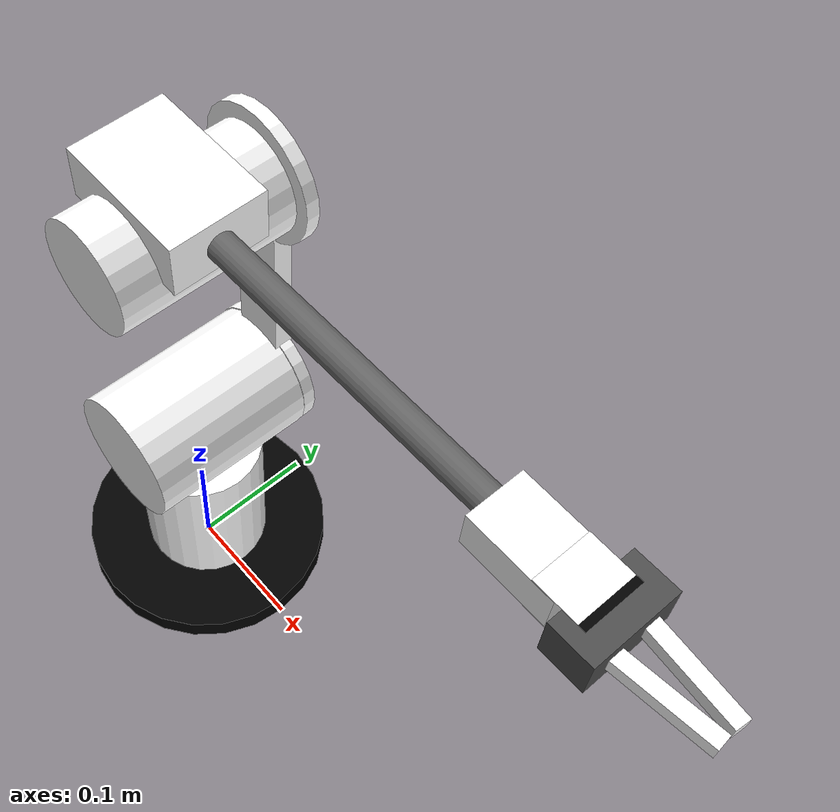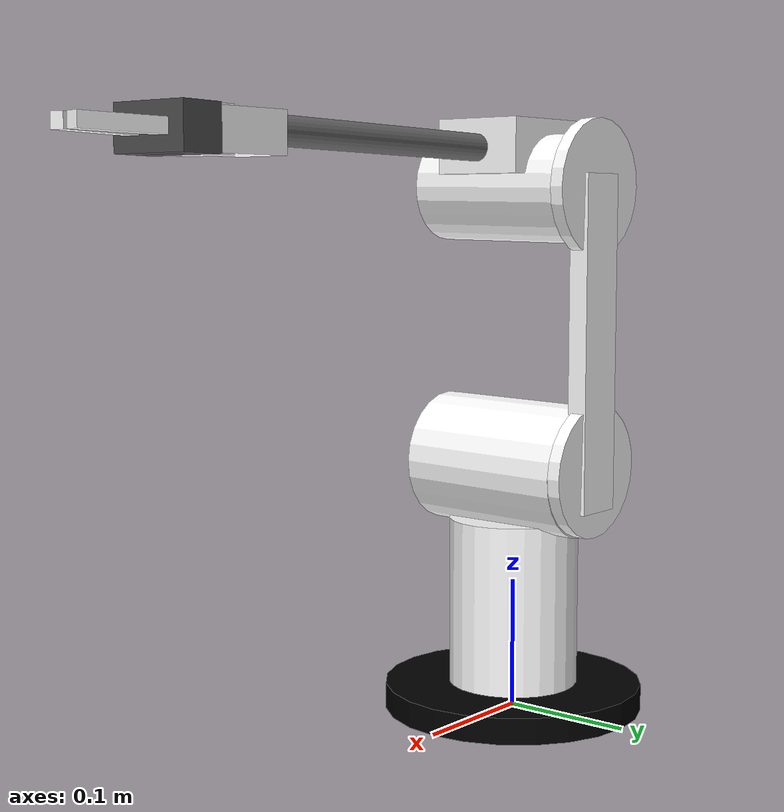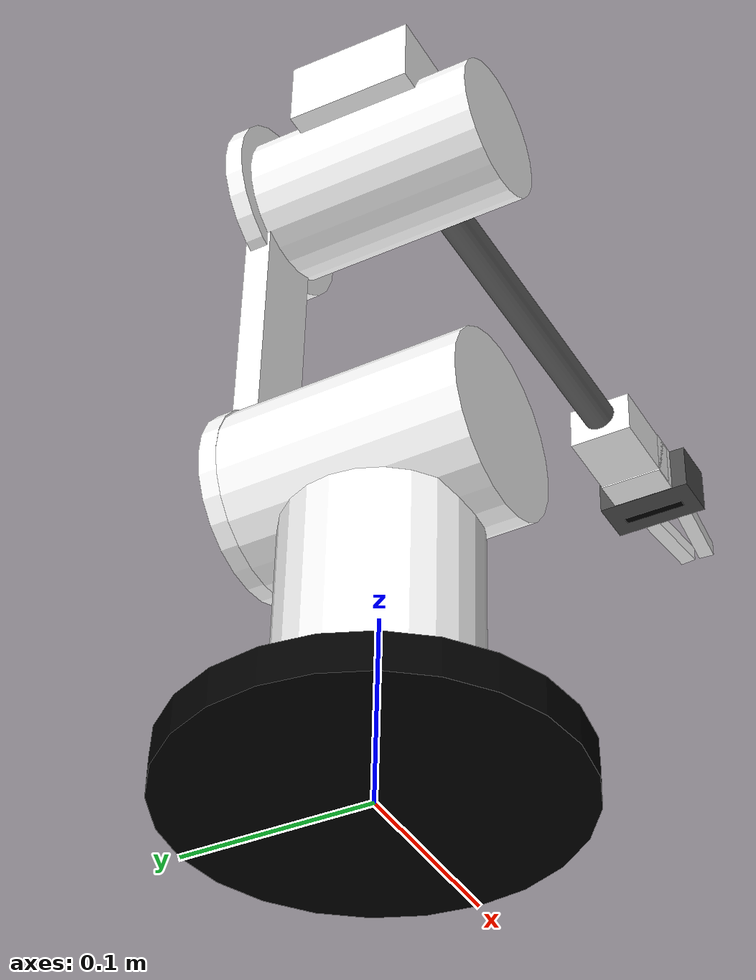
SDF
<sdf version='1.4'>
  <model name='mover6'>
    <link name='base_link'>
      <pose>0 0 0 0 -0 0</pose>
      <inertial>
        <pose>0 0 0.0475 0 -0 0</pose>
        <mass>0.2</mass>
        <inertia>
          <ixx>0.000737917</ixx>
          <ixy>0</ixy>
          <ixz>0</ixz>
          <iyy>0.000737917</iyy>
          <iyz>0</iyz>
          <izz>0.000625</izz>
        </inertia>
      </inertial>
      <collision name='base_link_collision'>
        <pose>0 0 0.01 0 -0 0</pose>
        <geometry>
          <cylinder>
            <length>0.02</length>
            <radius>0.1</radius>
          </cylinder>
        </geometry>
      </collision>
      <collision name='base_link_collision_A1fixed'>
        <pose>0 0 0.085 0 -0 0</pose>
        <geometry>
          <cylinder>
            <length>0.13</length>
            <radius>0.05</radius>
          </cylinder>
        </geometry>
      </collision>
      <visual name='base_link_visual'>
        <pose>0 0 0.01 0 -0 0</pose>
        <geometry>
          <cylinder>
            <length>0.02</length>
            <radius>0.1</radius>
          </cylinder>
        </geometry>
        <material>
        	<ambient>0 0 0 0.9</ambient>
        </material>
      </visual>
      <visual name='base_link_visual_A1fixed'>
        <pose>0 0 0.085 0 -0 0</pose>
        <geometry>
          <cylinder>
            <length>0.13</length>
            <radius>0.05</radius>
          </cylinder>
        </geometry>
        <material>
        	<ambient>1 1 1 0.9</ambient>
        </material>
      </visual>
      <velocity_decay>
        <linear>0</linear>
        <angular>0</angular>
      </velocity_decay>
    </link>
    <link name='Body1'>
      <pose>0 0 0.1925 0 -0 0</pose>
      <inertial>
        <pose>0 0 0 1.552 -0 0</pose>
        <mass>0.05</mass>
        <inertia>
          <ixx>0.000101667</ixx>
          <ixy>0</ixy>
          <ixz>0</ixz>
          <iyy>0.000101667</iyy>
          <iyz>0</iyz>
          <izz>6.25e-05</izz>
        </inertia>
      </inertial>
      <collision name='Body1_collision'>
        <pose>0 0 0 1.552 -0 0</pose>
        <geometry>
          <cylinder>
            <length>0.13</length>
            <radius>0.05</radius>
          </cylinder>
        </geometry>
      </collision>
      <visual name='Body1_visual'>
        <pose>0 0 0 1.552 -0 0</pose>
        <geometry>
          <cylinder>
            <length>0.13</length>
            <radius>0.05</radius>
          </cylinder>
        </geometry>
        <material>
        	<ambient>1 1 1 0.9</ambient>
        </material>
      </visual>
      <velocity_decay>
        <linear>0</linear>
        <angular>0</angular>
      </velocity_decay>
    </link>
    <joint name='Joint0' type='revolute'>
      <child>Body1</child>
      <parent>base_link</parent>
      <axis>
        <xyz>0 0 1</xyz>
        <limit>
          <lower>-1e+16</lower>
          <upper>1e+16</upper>
        </limit>
        <dynamics/>
      </axis>
    </joint>
    <link name='Body2'>
      <pose>0 0 0.1925 0 -0 0</pose>
      <inertial>
        <pose>0 0.07 0.0435714 1.552 -0 0</pose>
        <mass>0.07</mass>
        <inertia>
          <ixx>0.000488628</ixx>
          <ixy>0</ixy>
          <ixz>0</ixz>
          <iyy>9.15574e-05</iyy>
          <iyz>-7.48589e-06</iyz>
          <izz>0.000526633</izz>
        </inertia>
      </inertial>
      <collision name='Body2_collision'>
        <pose>0 0.07 0 1.552 -0 0</pose>
        <geometry>
          <cylinder>
            <length>0.01</length>
            <radius>0.05</radius>
          </cylinder>
        </geometry>
      </collision>
      <collision name='Body2_collision_Body20ben'>
        <pose>0 0.07 0.21 1.552 -0 0</pose>
        <geometry>
          <cylinder>
            <length>0.01</length>
            <radius>0.05</radius>
          </cylinder>
        </geometry>
      </collision>
      <collision name='Body2_collision_UpperArm'>
        <pose>0 0.07 0.095 0 -0 0</pose>
        <geometry>
          <box>
            <size>0.04 0.015 0.25</size>
          </box>
        </geometry>
      </collision>
      <visual name='Body2_visual'>
        <pose>0 0.07 0 1.552 -0 0</pose>
        <geometry>
          <cylinder>
            <length>0.01</length>
            <radius>0.05</radius>
          </cylinder>
        </geometry>
        <material>
        	<ambient>1 1 1 0.9</ambient>
        </material>
      </visual>
      <visual name='Body2_visual_Body20ben'>
        <pose>0 0.07 0.21 1.552 -0 0</pose>
        <geometry>
          <cylinder>
            <length>0.01</length>
            <radius>0.05</radius>
          </cylinder>
        </geometry>
        <material>
        	<ambient>1 1 1 0.9</ambient>
        </material>
      </visual>
      <visual name='Body2_visual_UpperArm'>
        <pose>0 0.07 0.095 0 -0 0</pose>
        <geometry>
          <box>
            <size>0.04 0.015 0.25</size>
          </box>
        </geometry>
        <material>
        	<ambient>1 1 1 0.9</ambient>
        </material>
      </visual>
      <velocity_decay>
        <linear>0</linear>
        <angular>0</angular>
      </velocity_decay>
    </link>
    <joint name='Joint1' type='revolute'>
      <child>Body2</child>
      <parent>Body1</parent>
      <axis>
        <xyz>0 1 0</xyz>
        <limit>
          <lower>-1e+16</lower>
          <upper>1e+16</upper>
        </limit>
        <dynamics/>
      </axis>
    </joint>
    <link name='Body3'>
      <pose>0 0 0.3825 0 -0 0</pose>
      <inertial>
        <pose>0 0 0.025 1.552 -0 0</pose>
        <mass>0.06</mass>
        <inertia>
          <ixx>0.000103333</ixx>
          <ixy>0</ixy>
          <ixz>0</ixz>
          <iyy>0.000100086</iyy>
          <iyz>-1.40939e-07</iyz>
          <izz>5.7164e-05</izz>
        </inertia>
      </inertial>
      <collision name='Body3_collision'>
        <pose>0 0 0.02 1.552 -0 0</pose>
        <geometry>
          <cylinder>
            <length>0.13</length>
            <radius>0.04</radius>
          </cylinder>
        </geometry>
      </collision>
      <collision name='Body3_collision_Body3TopBox'>
        <pose>0 0 0.05 0 -0 0</pose>
        <geometry>
          <box>
            <size>0.1 0.07 0.04</size>
          </box>
        </geometry>
      </collision>
      <visual name='Body3_visual'>
        <pose>0 0 0.02 1.552 -0 0</pose>
        <geometry>
          <cylinder>
            <length>0.13</length>
            <radius>0.04</radius>
          </cylinder>
        </geometry>
        <material>
        	<ambient>1 1 1 0.9</ambient>
        </material>
      </visual>
      <visual name='Body3_visual_Body3TopBox'>
        <pose>0 0 0.05 0 -0 0</pose>
        <geometry>
          <box>
            <size>0.1 0.07 0.04</size>
          </box>
        </geometry>
        <material>
        	<ambient>1 1 1 0.9</ambient>
        </material>
      </visual>
      <velocity_decay>
        <linear>0</linear>
        <angular>0</angular>
      </velocity_decay>
    </link>
    <joint name='Joint2' type='revolute'>
      <child>Body3</child>
      <parent>Body2</parent>
      <axis>
        <xyz>0 1 0</xyz>
        <limit>
          <lower>-1e+16</lower>
          <upper>1e+16</upper>
        </limit>
        <dynamics/>
      </axis>
    </joint>
    <link name='Body4'>
      <pose>0 0 0.4325 0 -0 0</pose>
      <inertial>
        <pose>0.21 0 0 0 1.552 0</pose>
        <mass>0.02</mass>
        <inertia>
          <ixx>0.000240846</ixx>
          <ixy>0</ixy>
          <ixz>-3.07561e-06</ixz>
          <iyy>0.000240903</iyy>
          <iyz>0</iyz>
          <izz>2.54448e-06</izz>
        </inertia>
      </inertial>
      <collision name='Body4_collision'>
        <pose>0.12 0 0 0 1.552 0</pose>
        <geometry>
          <cylinder>
            <length>0.3</length>
            <radius>0.01</radius>
          </cylinder>
        </geometry>
      </collision>
      <collision name='Body4_collision_Body4Front'>
        <pose>0.3 0 0 0 -0 0</pose>
        <geometry>
          <box>
            <size>0.06 0.04 0.028</size>
          </box>
        </geometry>
      </collision>
      <visual name='Body4_visual'>
        <pose>0.12 0 0 0 1.552 0</pose>
        <geometry>
          <cylinder>
            <length>0.3</length>
            <radius>0.01</radius>
          </cylinder>
        </geometry>
        <material>
        	<ambient>0.4 0.4 0.4 0.9</ambient>
        </material>
      </visual>
      <visual name='Body4_visual_Body4Front'>
        <pose>0.3 0 0 0 -0 0</pose>
        <geometry>
          <box>
            <size>0.06 0.04 0.028</size>
          </box>
        </geometry>
        <material>
        	<ambient>1 1 1 0.9</ambient>
        </material>
      </visual>
      <velocity_decay>
        <linear>0</linear>
        <angular>0</angular>
      </velocity_decay>
    </link>
    <joint name='Joint3' type='revolute'>
      <child>Body4</child>
      <parent>Body3</parent>
      <axis>
        <xyz>1 0 0</xyz>
        <limit>
          <lower>-1e+16</lower>
          <upper>1e+16</upper>
        </limit>
        <dynamics/>
      </axis>
    </joint>
    <link name='Body5'>
      <pose>0.3 0 0.4325 0 -0 0</pose>
      <inertial>
        <pose>0.03 0 0 0 -0 0</pose>
        <mass>0.01</mass>
        <inertia>
          <ixx>2.08333e-06</ixx>
          <ixy>0</ixy>
          <ixz>0</ixz>
          <iyy>1.5e-06</iyy>
          <iyz>0</iyz>
          <izz>1.5e-06</izz>
        </inertia>
      </inertial>
      <collision name='Body5_collision'>
        <pose>0.03 0 0 0 -0 0</pose>
        <geometry>
          <box>
            <size>0.03 0.04 0.03</size>
          </box>
        </geometry>
      </collision>
      <visual name='Body5_visual'>
        <pose>0.03 0 0 0 -0 0</pose>
        <geometry>
          <box>
            <size>0.03 0.04 0.03</size>
          </box>
        </geometry>
        <material>
        	<ambient>1 1 1 0.9</ambient>
        </material>
      </visual>
      <velocity_decay>
        <linear>0</linear>
        <angular>0</angular>
      </velocity_decay>
    </link>
    <joint name='Joint4' type='revolute'>
      <child>Body5</child>
      <parent>Body4</parent>
      <axis>
        <xyz>0 1 0</xyz>
        <limit>
          <lower>-1e+16</lower>
          <upper>1e+16</upper>
        </limit>
        <dynamics/>
      </axis>
    </joint>
    <link name='Body6'>
      <pose>0.35 0 0.4325 0 -0 0</pose>
      <inertial>
        <pose>0.00363572 7.7003e-20 6.83463e-05 0 -0 0</pose>
        <mass>0.022</mass>
        <inertia>
          <ixx>4.61849e-06</ixx>
          <ixy>6.15915e-24</ixy>
          <ixz>-9.69491e-08</ixz>
          <iyy>6.07576e-06</iyy>
          <iyz>1.15783e-25</iyz>
          <izz>8.52394e-06</izz>
        </inertia>
      </inertial>
      <collision name='Body6_collision'>
        <pose>0 0 0 0 -0 0</pose>
        <geometry>
          <box>
            <size>0.01 0.04 0.03</size>
          </box>
        </geometry>
      </collision>
      <collision name='Body6_collision_GripperBody'>
        <pose>0 0 0 0 1.552 0</pose>
        <geometry>
          <box>
            <size>0.03 0.06 0.03</size>
          </box>
        </geometry>
      </collision>
      <collision name='Body6_collision_GripperFinger1'>
        <pose>0.0399929 0.01 0.000751809 0.1 1.552 -3.69184e-16</pose>
        <geometry>
          <box>
            <size>0.01 0.01 0.07</size>
          </box>
        </geometry>
      </collision>
      <collision name='Body6_collision_GripperFinger2'>
        <pose>0.0399929 -0.01 0.000751809 -0.1 1.552 3.69184e-16</pose>
        <geometry>
          <box>
            <size>0.01 0.01 0.07</size>
          </box>
        </geometry>
      </collision>
      <visual name='Body6_visual'>
        <pose>0 0 0 0 -0 0</pose>
        <geometry>
          <box>
            <size>0.01 0.04 0.03</size>
          </box>
        </geometry>
        <material>
        	<ambient>0 0 0 0.9</ambient>
        </material>
      </visual>
      <visual name='Body6_visual_GripperBody'>
        <pose>0 0 0 0 1.552 0</pose>
        <geometry>
          <box>
            <size>0.03 0.06 0.03</size>
          </box>
        </geometry>
        <material>
        	<ambient>0.3 0.3 0.3 0.9</ambient>
        </material>
      </visual>
      <visual name='Body6_visual_GripperFinger1'>
        <pose>0.0399929 0.01 0.000751809 0.1 1.552 -3.69184e-16</pose>
        <geometry>
          <box>
            <size>0.01 0.01 0.07</size>
          </box>
        </geometry>
        <material>
        	<ambient>1 1 1 0.9</ambient>
        </material>
      </visual>
      <visual name='Body6_visual_GripperFinger2'>
        <pose>0.0399929 -0.01 0.000751809 -0.1 1.552 3.69184e-16</pose>
        <geometry>
          <box>
            <size>0.01 0.01 0.07</size>
          </box>
        </geometry>
        <material>
        	<ambient>1 1 1 0.9</ambient>
        </material>
      </visual>
      <velocity_decay>
        <linear>0</linear>
        <angular>0</angular>
      </velocity_decay>
    </link>
    <joint name='Joint5' type='revolute'>
      <child>Body6</child>
      <parent>Body5</parent>
      <axis>
        <xyz>1 0 0</xyz>
        <limit>
          <lower>-1e+16</lower>
          <upper>1e+16</upper>
        </limit>
        <dynamics/>
      </axis>
    </joint>
  </model>
</sdf>
